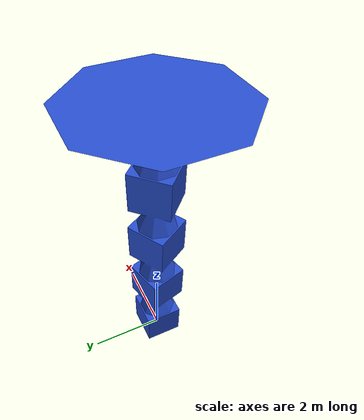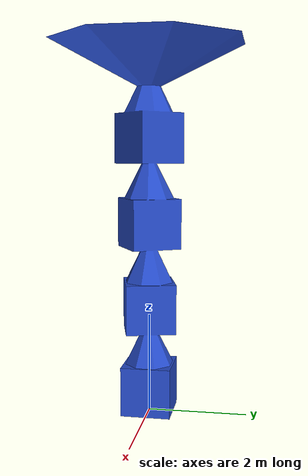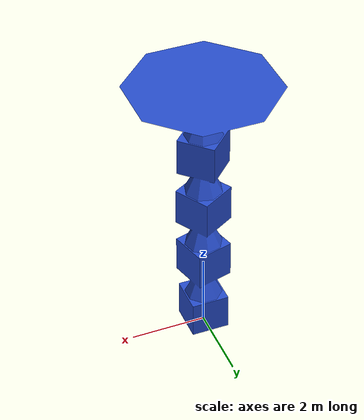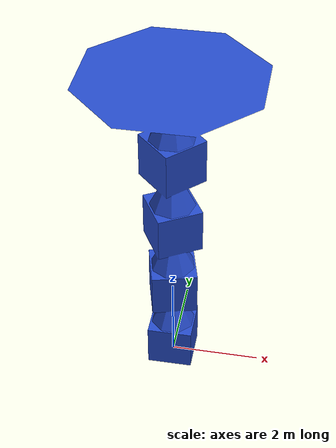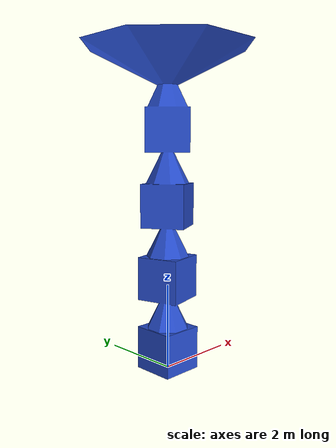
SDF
<?xml version="1.0" ?>
<sdf version="1.5">
  <model name="MyColumn">
    <static>true</static>
    <pose frame=''>0 0 0 0 0 0</pose>
    <link name="link">
      <pose frame=''>0 0 0 0 0 0</pose>
      <collision name="collision">
        <geometry>
          <mesh>
            <scale>1 1 1</scale>
            <uri>model://MyColumn/meshes/Column.stl</uri>
          </mesh>
        </geometry>
      </collision>
      <visual name="visual">
        <geometry>
          <mesh>
            <scale>1 1 1</scale>
            <uri>model://MyColumn/meshes/Column.stl</uri>
          </mesh>
        </geometry>
        <material>
          <script>
            <name>Gazebo/Blue</name>
            <uri>file://media/materials/scripts/gazebo.material</uri>
          </script>
        </material>
      </visual>
    </link>
  </model>
</sdf>
